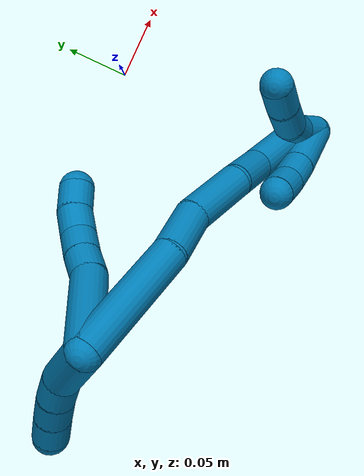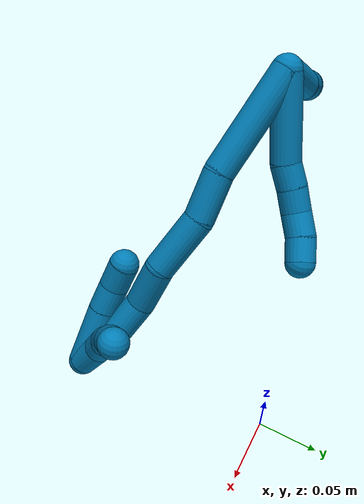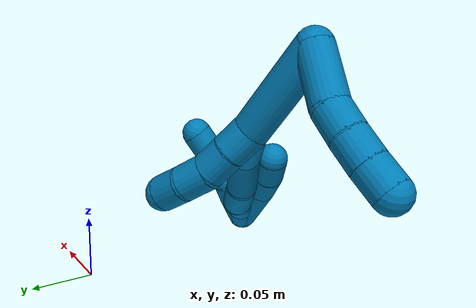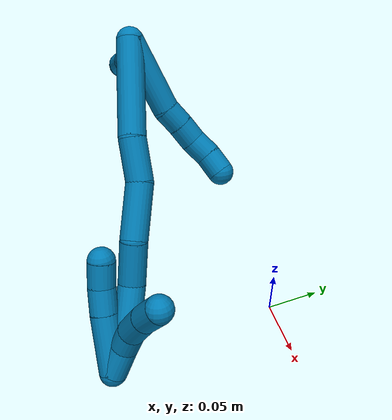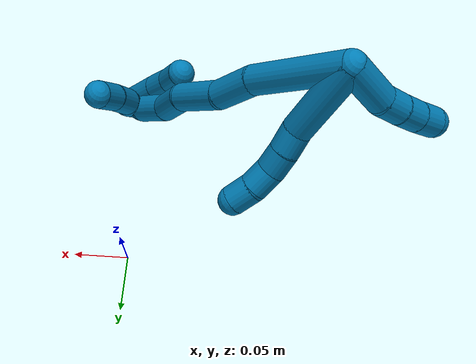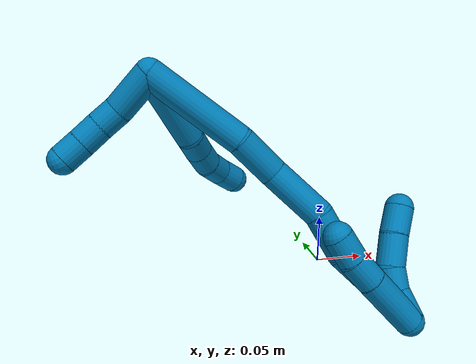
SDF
<sdf version="1.7">
 <world name="default">
  <model name="9">
   <static>0</static>
   <link name="9">
    <collision name="collision-cylinder-e_1_2_8">
     <pose>0.001623 0.013403 -0.031788 -2.74258 0.046998 -0.231441</pose>
     <geometry><cylinder><radius>0.0125</radius><length>0.069072</length></cylinder></geometry>
     <surface>
      <friction><ode><mu>1.16</mu><mu2>1.16</mu2><slip1>0</slip1><slip2>0</slip2></ode></friction>
      <contact><ode><kp>1e+06</kp><kd>1</kd><max_vel>0</max_vel><min_depth>0.001</min_depth></ode></contact>
     </surface>
    </collision>
    <visual name="visual-cylinder-e_1_2_8">
     <pose>0.001623 0.013403 -0.031788 -2.74258 0.046998 -0.231441</pose>
     <geometry><cylinder><radius>0.0125</radius><length>0.069072</length></cylinder></geometry>
     <material><ambient>0 0.490196 0.709804 1</ambient></material>
    </visual>
    <collision name="collision-cylinder-e_2_8_9">
     <pose>0.002878 0.032979 -0.071588 -2.48514 -0.036307 0.106524</pose>
     <geometry><cylinder><radius>0.0125</radius><length>0.020243</length></cylinder></geometry>
     <surface>
      <friction><ode><mu>1.16</mu><mu2>1.16</mu2><slip1>0</slip1><slip2>0</slip2></ode></friction>
      <contact><ode><kp>1e+06</kp><kd>1</kd><max_vel>0</max_vel><min_depth>0.001</min_depth></ode></contact>
     </surface>
    </collision>
    <visual name="visual-cylinder-e_2_8_9">
     <pose>0.002878 0.032979 -0.071588 -2.48514 -0.036307 0.106524</pose>
     <geometry><cylinder><radius>0.0125</radius><length>0.020243</length></cylinder></geometry>
     <material><ambient>0 0.490196 0.709804 1</ambient></material>
    </visual>
    <collision name="collision-cylinder-e_3_9_10">
     <pose>0.002774 0.044784 -0.087887 -2.54467 0.026357 -0.085623</pose>
     <geometry><cylinder><radius>0.0125</radius><length>0.020046</length></cylinder></geometry>
     <surface>
      <friction><ode><mu>1.16</mu><mu2>1.16</mu2><slip1>0</slip1><slip2>0</slip2></ode></friction>
      <contact><ode><kp>1e+06</kp><kd>1</kd><max_vel>0</max_vel><min_depth>0.001</min_depth></ode></contact>
     </surface>
    </collision>
    <visual name="visual-cylinder-e_3_9_10">
     <pose>0.002774 0.044784 -0.087887 -2.54467 0.026357 -0.085623</pose>
     <geometry><cylinder><radius>0.0125</radius><length>0.020046</length></cylinder></geometry>
     <material><ambient>0 0.490196 0.709804 1</ambient></material>
    </visual>
    <collision name="collision-cylinder-e_4_10_11">
     <pose>0.005434 0.057293 -0.103368 -2.37873 0.236178 -0.57521</pose>
     <geometry><cylinder><radius>0.0125</radius><length>0.020474</length></cylinder></geometry>
     <surface>
      <friction><ode><mu>1.16</mu><mu2>1.16</mu2><slip1>0</slip1><slip2>0</slip2></ode></friction>
      <contact><ode><kp>1e+06</kp><kd>1</kd><max_vel>0</max_vel><min_depth>0.001</min_depth></ode></contact>
     </surface>
    </collision>
    <visual name="visual-cylinder-e_4_10_11">
     <pose>0.005434 0.057293 -0.103368 -2.37873 0.236178 -0.57521</pose>
     <geometry><cylinder><radius>0.0125</radius><length>0.020474</length></cylinder></geometry>
     <material><ambient>0 0.490196 0.709804 1</ambient></material>
    </visual>
    <collision name="collision-cylinder-e_5_11_6">
     <pose>0.011711 0.069578 -0.118136 -2.52143 0.395193 -1.11697</pose>
     <geometry><cylinder><radius>0.0125</radius><length>0.020166</length></cylinder></geometry>
     <surface>
      <friction><ode><mu>1.16</mu><mu2>1.16</mu2><slip1>0</slip1><slip2>0</slip2></ode></friction>
      <contact><ode><kp>1e+06</kp><kd>1</kd><max_vel>0</max_vel><min_depth>0.001</min_depth></ode></contact>
     </surface>
    </collision>
    <visual name="visual-cylinder-e_5_11_6">
     <pose>0.011711 0.069578 -0.118136 -2.52143 0.395193 -1.11697</pose>
     <geometry><cylinder><radius>0.0125</radius><length>0.020166</length></cylinder></geometry>
     <material><ambient>0 0.490196 0.709804 1</ambient></material>
    </visual>
    <collision name="collision-cylinder-e_1_2_12">
     <pose>-0.018011 -0.000523 -0.008552 3.08048 -1.12678 -3.04489</pose>
     <geometry><cylinder><radius>0.0125</radius><length>0.039889</length></cylinder></geometry>
     <surface>
      <friction><ode><mu>1.16</mu><mu2>1.16</mu2><slip1>0</slip1><slip2>0</slip2></ode></friction>
      <contact><ode><kp>1e+06</kp><kd>1</kd><max_vel>0</max_vel><min_depth>0.001</min_depth></ode></contact>
     </surface>
    </collision>
    <visual name="visual-cylinder-e_1_2_12">
     <pose>-0.018011 -0.000523 -0.008552 3.08048 -1.12678 -3.04489</pose>
     <geometry><cylinder><radius>0.0125</radius><length>0.039889</length></cylinder></geometry>
     <material><ambient>0 0.490196 0.709804 1</ambient></material>
    </visual>
    <collision name="collision-cylinder-e_2_12_13">
     <pose>-0.045205 -0.003766 -0.020016 2.39052 -1.16141 -2.05954</pose>
     <geometry><cylinder><radius>0.0125</radius><length>0.020023</length></cylinder></geometry>
     <surface>
      <friction><ode><mu>1.16</mu><mu2>1.16</mu2><slip1>0</slip1><slip2>0</slip2></ode></friction>
      <contact><ode><kp>1e+06</kp><kd>1</kd><max_vel>0</max_vel><min_depth>0.001</min_depth></ode></contact>
     </surface>
    </collision>
    <visual name="visual-cylinder-e_2_12_13">
     <pose>-0.045205 -0.003766 -0.020016 2.39052 -1.16141 -2.05954</pose>
     <geometry><cylinder><radius>0.0125</radius><length>0.020023</length></cylinder></geometry>
     <material><ambient>0 0.490196 0.709804 1</ambient></material>
    </visual>
    <collision name="collision-cylinder-e_3_13_14">
     <pose>-0.063247 -0.009984 -0.026121 2.31044 -1.0798 -1.87221</pose>
     <geometry><cylinder><radius>0.0125</radius><length>0.020087</length></cylinder></geometry>
     <surface>
      <friction><ode><mu>1.16</mu><mu2>1.16</mu2><slip1>0</slip1><slip2>0</slip2></ode></friction>
      <contact><ode><kp>1e+06</kp><kd>1</kd><max_vel>0</max_vel><min_depth>0.001</min_depth></ode></contact>
     </surface>
    </collision>
    <visual name="visual-cylinder-e_3_13_14">
     <pose>-0.063247 -0.009984 -0.026121 2.31044 -1.0798 -1.87221</pose>
     <geometry><cylinder><radius>0.0125</radius><length>0.020087</length></cylinder></geometry>
     <material><ambient>0 0.490196 0.709804 1</ambient></material>
    </visual>
    <collision name="collision-cylinder-e_4_14_5">
     <pose>-0.080832 -0.017401 -0.032221 2.20914 -1.06103 -1.72352</pose>
     <geometry><cylinder><radius>0.0125</radius><length>0.020001</length></cylinder></geometry>
     <surface>
      <friction><ode><mu>1.16</mu><mu2>1.16</mu2><slip1>0</slip1><slip2>0</slip2></ode></friction>
      <contact><ode><kp>1e+06</kp><kd>1</kd><max_vel>0</max_vel><min_depth>0.001</min_depth></ode></contact>
     </surface>
    </collision>
    <visual name="visual-cylinder-e_4_14_5">
     <pose>-0.080832 -0.017401 -0.032221 2.20914 -1.06103 -1.72352</pose>
     <geometry><cylinder><radius>0.0125</radius><length>0.020001</length></cylinder></geometry>
     <material><ambient>0 0.490196 0.709804 1</ambient></material>
    </visual>
    <collision name="collision-cylinder-e_1_2_15">
     <pose>0.023568 -0.00129 -0.0382 3.10785 0.552545 3.0227</pose>
     <geometry><cylinder><radius>0.0125</radius><length>0.089809</length></cylinder></geometry>
     <surface>
      <friction><ode><mu>1.16</mu><mu2>1.16</mu2><slip1>0</slip1><slip2>0</slip2></ode></friction>
      <contact><ode><kp>1e+06</kp><kd>1</kd><max_vel>0</max_vel><min_depth>0.001</min_depth></ode></contact>
     </surface>
    </collision>
    <visual name="visual-cylinder-e_1_2_15">
     <pose>0.023568 -0.00129 -0.0382 3.10785 0.552545 3.0227</pose>
     <geometry><cylinder><radius>0.0125</radius><length>0.089809</length></cylinder></geometry>
     <material><ambient>0 0.490196 0.709804 1</ambient></material>
    </visual>
    <collision name="collision-cylinder-e_2_15_16">
     <pose>0.054544 -0.000647 -0.094614 -3.03589 0.384302 -2.61061</pose>
     <geometry><cylinder><radius>0.0125</radius><length>0.039514</length></cylinder></geometry>
     <surface>
      <friction><ode><mu>1.16</mu><mu2>1.16</mu2><slip1>0</slip1><slip2>0</slip2></ode></friction>
      <contact><ode><kp>1e+06</kp><kd>1</kd><max_vel>0</max_vel><min_depth>0.001</min_depth></ode></contact>
     </surface>
    </collision>
    <visual name="visual-cylinder-e_2_15_16">
     <pose>0.054544 -0.000647 -0.094614 -3.03589 0.384302 -2.61061</pose>
     <geometry><cylinder><radius>0.0125</radius><length>0.039514</length></cylinder></geometry>
     <material><ambient>0 0.490196 0.709804 1</ambient></material>
    </visual>
    <collision name="collision-cylinder-e_3_16_17">
     <pose>0.073607 -0.002814 -0.135345 2.96149 0.471066 2.42184</pose>
     <geometry><cylinder><radius>0.0125</radius><length>0.051369</length></cylinder></geometry>
     <surface>
      <friction><ode><mu>1.16</mu><mu2>1.16</mu2><slip1>0</slip1><slip2>0</slip2></ode></friction>
      <contact><ode><kp>1e+06</kp><kd>1</kd><max_vel>0</max_vel><min_depth>0.001</min_depth></ode></contact>
     </surface>
    </collision>
    <visual name="visual-cylinder-e_3_16_17">
     <pose>0.073607 -0.002814 -0.135345 2.96149 0.471066 2.42184</pose>
     <geometry><cylinder><radius>0.0125</radius><length>0.051369</length></cylinder></geometry>
     <material><ambient>0 0.490196 0.709804 1</ambient></material>
    </visual>
    <collision name="collision-cylinder-e_4_17_18">
     <pose>0.08846 -0.00966 -0.177512 3.00277 0.159698 1.71094</pose>
     <geometry><cylinder><radius>0.0125</radius><length>0.040193</length></cylinder></geometry>
     <surface>
      <friction><ode><mu>1.16</mu><mu2>1.16</mu2><slip1>0</slip1><slip2>0</slip2></ode></friction>
      <contact><ode><kp>1e+06</kp><kd>1</kd><max_vel>0</max_vel><min_depth>0.001</min_depth></ode></contact>
     </surface>
    </collision>
    <visual name="visual-cylinder-e_4_17_18">
     <pose>0.08846 -0.00966 -0.177512 3.00277 0.159698 1.71094</pose>
     <geometry><cylinder><radius>0.0125</radius><length>0.040193</length></cylinder></geometry>
     <material><ambient>0 0.490196 0.709804 1</ambient></material>
    </visual>
    <collision name="collision-cylinder-e_5_18_19">
     <pose>0.100378 -0.015608 -0.21431 2.95695 0.463658 2.39408</pose>
     <geometry><cylinder><radius>0.0125</radius><length>0.039007</length></cylinder></geometry>
     <surface>
      <friction><ode><mu>1.16</mu><mu2>1.16</mu2><slip1>0</slip1><slip2>0</slip2></ode></friction>
      <contact><ode><kp>1e+06</kp><kd>1</kd><max_vel>0</max_vel><min_depth>0.001</min_depth></ode></contact>
     </surface>
    </collision>
    <visual name="visual-cylinder-e_5_18_19">
     <pose>0.100378 -0.015608 -0.21431 2.95695 0.463658 2.39408</pose>
     <geometry><cylinder><radius>0.0125</radius><length>0.039007</length></cylinder></geometry>
     <material><ambient>0 0.490196 0.709804 1</ambient></material>
    </visual>
    <collision name="collision-cylinder-e_6_19_20">
     <pose>0.113772 -0.023087 -0.239266 2.64059 0.483275 1.53329</pose>
     <geometry><cylinder><radius>0.0125</radius><length>0.020108</length></cylinder></geometry>
     <surface>
      <friction><ode><mu>1.16</mu><mu2>1.16</mu2><slip1>0</slip1><slip2>0</slip2></ode></friction>
      <contact><ode><kp>1e+06</kp><kd>1</kd><max_vel>0</max_vel><min_depth>0.001</min_depth></ode></contact>
     </surface>
    </collision>
    <visual name="visual-cylinder-e_6_19_20">
     <pose>0.113772 -0.023087 -0.239266 2.64059 0.483275 1.53329</pose>
     <geometry><cylinder><radius>0.0125</radius><length>0.020108</length></cylinder></geometry>
     <material><ambient>0 0.490196 0.709804 1</ambient></material>
    </visual>
    <collision name="collision-cylinder-e_7_20_1">
     <pose>0.121797 -0.030281 -0.256032 2.82668 0.341867 1.65431</pose>
     <geometry><cylinder><radius>0.0125</radius><length>0.020001</length></cylinder></geometry>
     <surface>
      <friction><ode><mu>1.16</mu><mu2>1.16</mu2><slip1>0</slip1><slip2>0</slip2></ode></friction>
      <contact><ode><kp>1e+06</kp><kd>1</kd><max_vel>0</max_vel><min_depth>0.001</min_depth></ode></contact>
     </surface>
    </collision>
    <visual name="visual-cylinder-e_7_20_1">
     <pose>0.121797 -0.030281 -0.256032 2.82668 0.341867 1.65431</pose>
     <geometry><cylinder><radius>0.0125</radius><length>0.020001</length></cylinder></geometry>
     <material><ambient>0 0.490196 0.709804 1</ambient></material>
    </visual>
    <collision name="collision-cylinder-e_1_1_21">
     <pose>0.123746 -0.027205 -0.252914 -0.460728 -0.103717 0.024345</pose>
     <geometry><cylinder><radius>0.0125</radius><length>0.027111</length></cylinder></geometry>
     <surface>
      <friction><ode><mu>1.16</mu><mu2>1.16</mu2><slip1>0</slip1><slip2>0</slip2></ode></friction>
      <contact><ode><kp>1e+06</kp><kd>1</kd><max_vel>0</max_vel><min_depth>0.001</min_depth></ode></contact>
     </surface>
    </collision>
    <visual name="visual-cylinder-e_1_1_21">
     <pose>0.123746 -0.027205 -0.252914 -0.460728 -0.103717 0.024345</pose>
     <geometry><cylinder><radius>0.0125</radius><length>0.027111</length></cylinder></geometry>
     <material><ambient>0 0.490196 0.709804 1</ambient></material>
    </visual>
    <collision name="collision-cylinder-e_2_21_22">
     <pose>0.124129 -0.016913 -0.23181 -0.444318 0.176816 -0.04004</pose>
     <geometry><cylinder><radius>0.0125</radius><length>0.020312</length></cylinder></geometry>
     <surface>
      <friction><ode><mu>1.16</mu><mu2>1.16</mu2><slip1>0</slip1><slip2>0</slip2></ode></friction>
      <contact><ode><kp>1e+06</kp><kd>1</kd><max_vel>0</max_vel><min_depth>0.001</min_depth></ode></contact>
     </surface>
    </collision>
    <visual name="visual-cylinder-e_2_21_22">
     <pose>0.124129 -0.016913 -0.23181 -0.444318 0.176816 -0.04004</pose>
     <geometry><cylinder><radius>0.0125</radius><length>0.020312</length></cylinder></geometry>
     <material><ambient>0 0.490196 0.709804 1</ambient></material>
    </visual>
    <collision name="collision-cylinder-e_3_22_23">
     <pose>0.132089 -0.005657 -0.212373 -0.589191 0.458076 -0.141239</pose>
     <geometry><cylinder><radius>0.0125</radius><length>0.027921</length></cylinder></geometry>
     <surface>
      <friction><ode><mu>1.16</mu><mu2>1.16</mu2><slip1>0</slip1><slip2>0</slip2></ode></friction>
      <contact><ode><kp>1e+06</kp><kd>1</kd><max_vel>0</max_vel><min_depth>0.001</min_depth></ode></contact>
     </surface>
    </collision>
    <visual name="visual-cylinder-e_3_22_23">
     <pose>0.132089 -0.005657 -0.212373 -0.589191 0.458076 -0.141239</pose>
     <geometry><cylinder><radius>0.0125</radius><length>0.027921</length></cylinder></geometry>
     <material><ambient>0 0.490196 0.709804 1</ambient></material>
    </visual>
    <collision name="collision-cylinder-e_4_23_4">
     <pose>0.144479 0.0081 -0.193772 -0.692814 0.528522 -0.194727</pose>
     <geometry><cylinder><radius>0.0125</radius><length>0.024656</length></cylinder></geometry>
     <surface>
      <friction><ode><mu>1.16</mu><mu2>1.16</mu2><slip1>0</slip1><slip2>0</slip2></ode></friction>
      <contact><ode><kp>1e+06</kp><kd>1</kd><max_vel>0</max_vel><min_depth>0.001</min_depth></ode></contact>
     </surface>
    </collision>
    <visual name="visual-cylinder-e_4_23_4">
     <pose>0.144479 0.0081 -0.193772 -0.692814 0.528522 -0.194727</pose>
     <geometry><cylinder><radius>0.0125</radius><length>0.024656</length></cylinder></geometry>
     <material><ambient>0 0.490196 0.709804 1</ambient></material>
    </visual>
    <collision name="collision-cylinder-e_1_1_24">
     <pose>0.116181 -0.035284 -0.240312 0.084273 -0.347415 -0.014796</pose>
     <geometry><cylinder><radius>0.0125</radius><length>0.05268</length></cylinder></geometry>
     <surface>
      <friction><ode><mu>1.16</mu><mu2>1.16</mu2><slip1>0</slip1><slip2>0</slip2></ode></friction>
      <contact><ode><kp>1e+06</kp><kd>1</kd><max_vel>0</max_vel><min_depth>0.001</min_depth></ode></contact>
     </surface>
    </collision>
    <visual name="visual-cylinder-e_1_1_24">
     <pose>0.116181 -0.035284 -0.240312 0.084273 -0.347415 -0.014796</pose>
     <geometry><cylinder><radius>0.0125</radius><length>0.05268</length></cylinder></geometry>
     <material><ambient>0 0.490196 0.709804 1</ambient></material>
    </visual>
    <collision name="collision-cylinder-e_2_24_25">
     <pose>0.10322 -0.037467 -0.204295 0.008738 -0.338591 -0.001494</pose>
     <geometry><cylinder><radius>0.0125</radius><length>0.024042</length></cylinder></geometry>
     <surface>
      <friction><ode><mu>1.16</mu><mu2>1.16</mu2><slip1>0</slip1><slip2>0</slip2></ode></friction>
      <contact><ode><kp>1e+06</kp><kd>1</kd><max_vel>0</max_vel><min_depth>0.001</min_depth></ode></contact>
     </surface>
    </collision>
    <visual name="visual-cylinder-e_2_24_25">
     <pose>0.10322 -0.037467 -0.204295 0.008738 -0.338591 -0.001494</pose>
     <geometry><cylinder><radius>0.0125</radius><length>0.024042</length></cylinder></geometry>
     <material><ambient>0 0.490196 0.709804 1</ambient></material>
    </visual>
    <collision name="collision-cylinder-e_3_25_3">
     <pose>0.097022 -0.036516 -0.181578 -0.092015 -0.190597 0.008802</pose>
     <geometry><cylinder><radius>0.0125</radius><length>0.023278</length></cylinder></geometry>
     <surface>
      <friction><ode><mu>1.16</mu><mu2>1.16</mu2><slip1>0</slip1><slip2>0</slip2></ode></friction>
      <contact><ode><kp>1e+06</kp><kd>1</kd><max_vel>0</max_vel><min_depth>0.001</min_depth></ode></contact>
     </surface>
    </collision>
    <visual name="visual-cylinder-e_3_25_3">
     <pose>0.097022 -0.036516 -0.181578 -0.092015 -0.190597 0.008802</pose>
     <geometry><cylinder><radius>0.0125</radius><length>0.023278</length></cylinder></geometry>
     <material><ambient>0 0.490196 0.709804 1</ambient></material>
    </visual>
    <collision name="collision-sphere-3">
     <pose>0.094817 -0.035466 -0.170198 0 -0 0</pose>
     <geometry><sphere><radius>0.0125</radius></sphere></geometry>
     <surface>
      <friction><ode><mu>1.16</mu><mu2>1.16</mu2><slip1>0</slip1><slip2>0</slip2></ode></friction>
      <contact><ode><kp>1e+06</kp><kd>1</kd><max_vel>0</max_vel><min_depth>0.001</min_depth></ode></contact>
     </surface>
    </collision>
    <visual name="visual-sphere-3">
     <pose>0.094817 -0.035466 -0.170198 0 -0 0</pose>
     <geometry><sphere><radius>0.0125</radius></sphere></geometry>
     <material><ambient>0 0.490196 0.709804 1</ambient></material>
    </visual>
    <collision name="collision-sphere-25">
     <pose>0.099227 -0.037566 -0.192957 0 -0 0</pose>
     <geometry><sphere><radius>0.0125</radius></sphere></geometry>
     <surface>
      <friction><ode><mu>1.16</mu><mu2>1.16</mu2><slip1>0</slip1><slip2>0</slip2></ode></friction>
      <contact><ode><kp>1e+06</kp><kd>1</kd><max_vel>0</max_vel><min_depth>0.001</min_depth></ode></contact>
     </surface>
    </collision>
    <visual name="visual-sphere-25">
     <pose>0.099227 -0.037566 -0.192957 0 -0 0</pose>
     <geometry><sphere><radius>0.0125</radius></sphere></geometry>
     <material><ambient>0 0.490196 0.709804 1</ambient></material>
    </visual>
    <collision name="collision-sphere-24">
     <pose>0.107213 -0.037368 -0.215634 0 -0 0</pose>
     <geometry><sphere><radius>0.0125</radius></sphere></geometry>
     <surface>
      <friction><ode><mu>1.16</mu><mu2>1.16</mu2><slip1>0</slip1><slip2>0</slip2></ode></friction>
      <contact><ode><kp>1e+06</kp><kd>1</kd><max_vel>0</max_vel><min_depth>0.001</min_depth></ode></contact>
     </surface>
    </collision>
    <visual name="visual-sphere-24">
     <pose>0.107213 -0.037368 -0.215634 0 -0 0</pose>
     <geometry><sphere><radius>0.0125</radius></sphere></geometry>
     <material><ambient>0 0.490196 0.709804 1</ambient></material>
    </visual>
    <collision name="collision-sphere-4">
     <pose>0.150695 0.0149 -0.18558 0 -0 0</pose>
     <geometry><sphere><radius>0.0125</radius></sphere></geometry>
     <surface>
      <friction><ode><mu>1.16</mu><mu2>1.16</mu2><slip1>0</slip1><slip2>0</slip2></ode></friction>
      <contact><ode><kp>1e+06</kp><kd>1</kd><max_vel>0</max_vel><min_depth>0.001</min_depth></ode></contact>
     </surface>
    </collision>
    <visual name="visual-sphere-4">
     <pose>0.150695 0.0149 -0.18558 0 -0 0</pose>
     <geometry><sphere><radius>0.0125</radius></sphere></geometry>
     <material><ambient>0 0.490196 0.709804 1</ambient></material>
    </visual>
    <collision name="collision-sphere-23">
     <pose>0.138262 0.0013 -0.201963 0 -0 0</pose>
     <geometry><sphere><radius>0.0125</radius></sphere></geometry>
     <surface>
      <friction><ode><mu>1.16</mu><mu2>1.16</mu2><slip1>0</slip1><slip2>0</slip2></ode></friction>
      <contact><ode><kp>1e+06</kp><kd>1</kd><max_vel>0</max_vel><min_depth>0.001</min_depth></ode></contact>
     </surface>
    </collision>
    <visual name="visual-sphere-23">
     <pose>0.138262 0.0013 -0.201963 0 -0 0</pose>
     <geometry><sphere><radius>0.0125</radius></sphere></geometry>
     <material><ambient>0 0.490196 0.709804 1</ambient></material>
    </visual>
    <collision name="collision-sphere-22">
     <pose>0.125915 -0.012615 -0.222783 0 -0 0</pose>
     <geometry><sphere><radius>0.0125</radius></sphere></geometry>
     <surface>
      <friction><ode><mu>1.16</mu><mu2>1.16</mu2><slip1>0</slip1><slip2>0</slip2></ode></friction>
      <contact><ode><kp>1e+06</kp><kd>1</kd><max_vel>0</max_vel><min_depth>0.001</min_depth></ode></contact>
     </surface>
    </collision>
    <visual name="visual-sphere-22">
     <pose>0.125915 -0.012615 -0.222783 0 -0 0</pose>
     <geometry><sphere><radius>0.0125</radius></sphere></geometry>
     <material><ambient>0 0.490196 0.709804 1</ambient></material>
    </visual>
    <collision name="collision-sphere-21">
     <pose>0.122342 -0.02121 -0.240837 0 -0 0</pose>
     <geometry><sphere><radius>0.0125</radius></sphere></geometry>
     <surface>
      <friction><ode><mu>1.16</mu><mu2>1.16</mu2><slip1>0</slip1><slip2>0</slip2></ode></friction>
      <contact><ode><kp>1e+06</kp><kd>1</kd><max_vel>0</max_vel><min_depth>0.001</min_depth></ode></contact>
     </surface>
    </collision>
    <visual name="visual-sphere-21">
     <pose>0.122342 -0.02121 -0.240837 0 -0 0</pose>
     <geometry><sphere><radius>0.0125</radius></sphere></geometry>
     <material><ambient>0 0.490196 0.709804 1</ambient></material>
    </visual>
    <collision name="collision-sphere-1">
     <pose>0.125149 -0.033199 -0.264991 0 -0 0</pose>
     <geometry><sphere><radius>0.0125</radius></sphere></geometry>
     <surface>
      <friction><ode><mu>1.16</mu><mu2>1.16</mu2><slip1>0</slip1><slip2>0</slip2></ode></friction>
      <contact><ode><kp>1e+06</kp><kd>1</kd><max_vel>0</max_vel><min_depth>0.001</min_depth></ode></contact>
     </surface>
    </collision>
    <visual name="visual-sphere-1">
     <pose>0.125149 -0.033199 -0.264991 0 -0 0</pose>
     <geometry><sphere><radius>0.0125</radius></sphere></geometry>
     <material><ambient>0 0.490196 0.709804 1</ambient></material>
    </visual>
    <collision name="collision-sphere-6">
     <pose>0.015593 0.074987 -0.125709 0 -0 0</pose>
     <geometry><sphere><radius>0.0125</radius></sphere></geometry>
     <surface>
      <friction><ode><mu>1.16</mu><mu2>1.16</mu2><slip1>0</slip1><slip2>0</slip2></ode></friction>
      <contact><ode><kp>1e+06</kp><kd>1</kd><max_vel>0</max_vel><min_depth>0.001</min_depth></ode></contact>
     </surface>
    </collision>
    <visual name="visual-sphere-6">
     <pose>0.015593 0.074987 -0.125709 0 -0 0</pose>
     <geometry><sphere><radius>0.0125</radius></sphere></geometry>
     <material><ambient>0 0.490196 0.709804 1</ambient></material>
    </visual>
    <collision name="collision-sphere-11">
     <pose>0.007829 0.06417 -0.110563 0 -0 0</pose>
     <geometry><sphere><radius>0.0125</radius></sphere></geometry>
     <surface>
      <friction><ode><mu>1.16</mu><mu2>1.16</mu2><slip1>0</slip1><slip2>0</slip2></ode></friction>
      <contact><ode><kp>1e+06</kp><kd>1</kd><max_vel>0</max_vel><min_depth>0.001</min_depth></ode></contact>
     </surface>
    </collision>
    <visual name="visual-sphere-11">
     <pose>0.007829 0.06417 -0.110563 0 -0 0</pose>
     <geometry><sphere><radius>0.0125</radius></sphere></geometry>
     <material><ambient>0 0.490196 0.709804 1</ambient></material>
    </visual>
    <collision name="collision-sphere-10">
     <pose>0.003039 0.050415 -0.096174 0 -0 0</pose>
     <geometry><sphere><radius>0.0125</radius></sphere></geometry>
     <surface>
      <friction><ode><mu>1.16</mu><mu2>1.16</mu2><slip1>0</slip1><slip2>0</slip2></ode></friction>
      <contact><ode><kp>1e+06</kp><kd>1</kd><max_vel>0</max_vel><min_depth>0.001</min_depth></ode></contact>
     </surface>
    </collision>
    <visual name="visual-sphere-10">
     <pose>0.003039 0.050415 -0.096174 0 -0 0</pose>
     <geometry><sphere><radius>0.0125</radius></sphere></geometry>
     <material><ambient>0 0.490196 0.709804 1</ambient></material>
    </visual>
    <collision name="collision-sphere-9">
     <pose>0.00251 0.039152 -0.0796 0 -0 0</pose>
     <geometry><sphere><radius>0.0125</radius></sphere></geometry>
     <surface>
      <friction><ode><mu>1.16</mu><mu2>1.16</mu2><slip1>0</slip1><slip2>0</slip2></ode></friction>
      <contact><ode><kp>1e+06</kp><kd>1</kd><max_vel>0</max_vel><min_depth>0.001</min_depth></ode></contact>
     </surface>
    </collision>
    <visual name="visual-sphere-9">
     <pose>0.00251 0.039152 -0.0796 0 -0 0</pose>
     <geometry><sphere><radius>0.0125</radius></sphere></geometry>
     <material><ambient>0 0.490196 0.709804 1</ambient></material>
    </visual>
    <collision name="collision-sphere-2">
     <geometry><sphere><radius>0.0125</radius></sphere></geometry>
     <surface>
      <friction><ode><mu>1.16</mu><mu2>1.16</mu2><slip1>0</slip1><slip2>0</slip2></ode></friction>
      <contact><ode><kp>1e+06</kp><kd>1</kd><max_vel>0</max_vel><min_depth>0.001</min_depth></ode></contact>
     </surface>
    </collision>
    <visual name="visual-sphere-2">
     <geometry><sphere><radius>0.0125</radius></sphere></geometry>
     <material><ambient>0 0.490196 0.709804 1</ambient></material>
    </visual>
    <collision name="collision-sphere-19">
     <pose>0.1091 -0.018811 -0.231458 0 -0 0</pose>
     <geometry><sphere><radius>0.0125</radius></sphere></geometry>
     <surface>
      <friction><ode><mu>1.16</mu><mu2>1.16</mu2><slip1>0</slip1><slip2>0</slip2></ode></friction>
      <contact><ode><kp>1e+06</kp><kd>1</kd><max_vel>0</max_vel><min_depth>0.001</min_depth></ode></contact>
     </surface>
    </collision>
    <visual name="visual-sphere-19">
     <pose>0.1091 -0.018811 -0.231458 0 -0 0</pose>
     <geometry><sphere><radius>0.0125</radius></sphere></geometry>
     <material><ambient>0 0.490196 0.709804 1</ambient></material>
    </visual>
    <collision name="collision-sphere-8">
     <pose>0.003245 0.026805 -0.063575 0 -0 0</pose>
     <geometry><sphere><radius>0.0125</radius></sphere></geometry>
     <surface>
      <friction><ode><mu>1.16</mu><mu2>1.16</mu2><slip1>0</slip1><slip2>0</slip2></ode></friction>
      <contact><ode><kp>1e+06</kp><kd>1</kd><max_vel>0</max_vel><min_depth>0.001</min_depth></ode></contact>
     </surface>
    </collision>
    <visual name="visual-sphere-8">
     <pose>0.003245 0.026805 -0.063575 0 -0 0</pose>
     <geometry><sphere><radius>0.0125</radius></sphere></geometry>
     <material><ambient>0 0.490196 0.709804 1</ambient></material>
    </visual>
    <collision name="collision-sphere-12">
     <pose>-0.036021 -0.001047 -0.017103 0 -0 0</pose>
     <geometry><sphere><radius>0.0125</radius></sphere></geometry>
     <surface>
      <friction><ode><mu>1.16</mu><mu2>1.16</mu2><slip1>0</slip1><slip2>0</slip2></ode></friction>
      <contact><ode><kp>1e+06</kp><kd>1</kd><max_vel>0</max_vel><min_depth>0.001</min_depth></ode></contact>
     </surface>
    </collision>
    <visual name="visual-sphere-12">
     <pose>-0.036021 -0.001047 -0.017103 0 -0 0</pose>
     <geometry><sphere><radius>0.0125</radius></sphere></geometry>
     <material><ambient>0 0.490196 0.709804 1</ambient></material>
    </visual>
    <collision name="collision-sphere-13">
     <pose>-0.05439 -0.006486 -0.022929 0 -0 0</pose>
     <geometry><sphere><radius>0.0125</radius></sphere></geometry>
     <surface>
      <friction><ode><mu>1.16</mu><mu2>1.16</mu2><slip1>0</slip1><slip2>0</slip2></ode></friction>
      <contact><ode><kp>1e+06</kp><kd>1</kd><max_vel>0</max_vel><min_depth>0.001</min_depth></ode></contact>
     </surface>
    </collision>
    <visual name="visual-sphere-13">
     <pose>-0.05439 -0.006486 -0.022929 0 -0 0</pose>
     <geometry><sphere><radius>0.0125</radius></sphere></geometry>
     <material><ambient>0 0.490196 0.709804 1</ambient></material>
    </visual>
    <collision name="collision-sphere-14">
     <pose>-0.072103 -0.013482 -0.029313 0 -0 0</pose>
     <geometry><sphere><radius>0.0125</radius></sphere></geometry>
     <surface>
      <friction><ode><mu>1.16</mu><mu2>1.16</mu2><slip1>0</slip1><slip2>0</slip2></ode></friction>
      <contact><ode><kp>1e+06</kp><kd>1</kd><max_vel>0</max_vel><min_depth>0.001</min_depth></ode></contact>
     </surface>
    </collision>
    <visual name="visual-sphere-14">
     <pose>-0.072103 -0.013482 -0.029313 0 -0 0</pose>
     <geometry><sphere><radius>0.0125</radius></sphere></geometry>
     <material><ambient>0 0.490196 0.709804 1</ambient></material>
    </visual>
    <collision name="collision-sphere-5">
     <pose>-0.089562 -0.02132 -0.035128 0 -0 0</pose>
     <geometry><sphere><radius>0.0125</radius></sphere></geometry>
     <surface>
      <friction><ode><mu>1.16</mu><mu2>1.16</mu2><slip1>0</slip1><slip2>0</slip2></ode></friction>
      <contact><ode><kp>1e+06</kp><kd>1</kd><max_vel>0</max_vel><min_depth>0.001</min_depth></ode></contact>
     </surface>
    </collision>
    <visual name="visual-sphere-5">
     <pose>-0.089562 -0.02132 -0.035128 0 -0 0</pose>
     <geometry><sphere><radius>0.0125</radius></sphere></geometry>
     <material><ambient>0 0.490196 0.709804 1</ambient></material>
    </visual>
    <collision name="collision-sphere-15">
     <pose>0.047137 -0.002579 -0.076401 0 -0 0</pose>
     <geometry><sphere><radius>0.0125</radius></sphere></geometry>
     <surface>
      <friction><ode><mu>1.16</mu><mu2>1.16</mu2><slip1>0</slip1><slip2>0</slip2></ode></friction>
      <contact><ode><kp>1e+06</kp><kd>1</kd><max_vel>0</max_vel><min_depth>0.001</min_depth></ode></contact>
     </surface>
    </collision>
    <visual name="visual-sphere-15">
     <pose>0.047137 -0.002579 -0.076401 0 -0 0</pose>
     <geometry><sphere><radius>0.0125</radius></sphere></geometry>
     <material><ambient>0 0.490196 0.709804 1</ambient></material>
    </visual>
    <collision name="collision-sphere-16">
     <pose>0.061951 0.001286 -0.112828 0 -0 0</pose>
     <geometry><sphere><radius>0.0125</radius></sphere></geometry>
     <surface>
      <friction><ode><mu>1.16</mu><mu2>1.16</mu2><slip1>0</slip1><slip2>0</slip2></ode></friction>
      <contact><ode><kp>1e+06</kp><kd>1</kd><max_vel>0</max_vel><min_depth>0.001</min_depth></ode></contact>
     </surface>
    </collision>
    <visual name="visual-sphere-16">
     <pose>0.061951 0.001286 -0.112828 0 -0 0</pose>
     <geometry><sphere><radius>0.0125</radius></sphere></geometry>
     <material><ambient>0 0.490196 0.709804 1</ambient></material>
    </visual>
    <collision name="collision-sphere-17">
     <pose>0.085264 -0.006914 -0.157862 0 -0 0</pose>
     <geometry><sphere><radius>0.0125</radius></sphere></geometry>
     <surface>
      <friction><ode><mu>1.16</mu><mu2>1.16</mu2><slip1>0</slip1><slip2>0</slip2></ode></friction>
      <contact><ode><kp>1e+06</kp><kd>1</kd><max_vel>0</max_vel><min_depth>0.001</min_depth></ode></contact>
     </surface>
    </collision>
    <visual name="visual-sphere-17">
     <pose>0.085264 -0.006914 -0.157862 0 -0 0</pose>
     <geometry><sphere><radius>0.0125</radius></sphere></geometry>
     <material><ambient>0 0.490196 0.709804 1</ambient></material>
    </visual>
    <collision name="collision-sphere-18">
     <pose>0.091655 -0.012405 -0.197162 0 -0 0</pose>
     <geometry><sphere><radius>0.0125</radius></sphere></geometry>
     <surface>
      <friction><ode><mu>1.16</mu><mu2>1.16</mu2><slip1>0</slip1><slip2>0</slip2></ode></friction>
      <contact><ode><kp>1e+06</kp><kd>1</kd><max_vel>0</max_vel><min_depth>0.001</min_depth></ode></contact>
     </surface>
    </collision>
    <visual name="visual-sphere-18">
     <pose>0.091655 -0.012405 -0.197162 0 -0 0</pose>
     <geometry><sphere><radius>0.0125</radius></sphere></geometry>
     <material><ambient>0 0.490196 0.709804 1</ambient></material>
    </visual>
    <collision name="collision-sphere-20">
     <pose>0.118444 -0.027363 -0.247074 0 -0 0</pose>
     <geometry><sphere><radius>0.0125</radius></sphere></geometry>
     <surface>
      <friction><ode><mu>1.16</mu><mu2>1.16</mu2><slip1>0</slip1><slip2>0</slip2></ode></friction>
      <contact><ode><kp>1e+06</kp><kd>1</kd><max_vel>0</max_vel><min_depth>0.001</min_depth></ode></contact>
     </surface>
    </collision>
    <visual name="visual-sphere-20">
     <pose>0.118444 -0.027363 -0.247074 0 -0 0</pose>
     <geometry><sphere><radius>0.0125</radius></sphere></geometry>
     <material><ambient>0 0.490196 0.709804 1</ambient></material>
    </visual>
    <inertial>
     <pose>0.05373 -0.003439 -0.127247 0 -0 0</pose>
     <mass>0.75</mass>
     <inertia><ixx>-1e-06</ixx><ixy>0</ixy><ixz>0</ixz><iyy>0.000111</iyy><iyz>0</iyz><izz>-6.6e-05</izz></inertia>
    </inertial>
   </link>
   <pose>-0.177866 -0.075885 0.212146 0.028637 -0.38413 -0.282836</pose>
  </model>
 </world>
</sdf>
